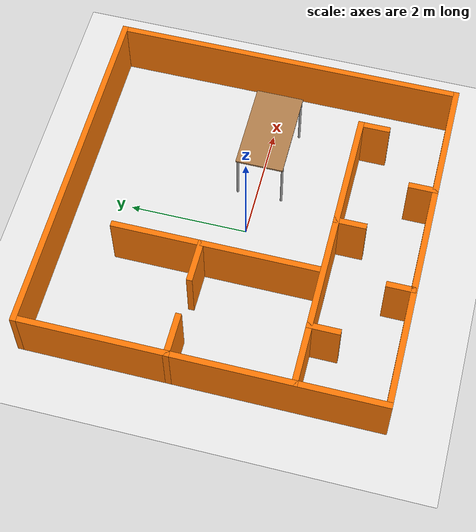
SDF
<sdf version="1.7">
 <world name="default">
  <plugin name="gazebo_ros_state" filename="libgazebo_ros_state.so">
   <ros><namespace>/gazebo</namespace></ros>
   <update_rate>30.0</update_rate>
  </plugin>
  <model name="slippery_ground">
   <static>1</static>
   <link name="link">
    <collision name="collision1">
     <geometry><plane><normal>0 0 1</normal><size>100 100</size></plane></geometry>
     <surface><friction><ode><mu>10</mu><mu2>10</mu2></ode></friction></surface>
    </collision>
    <visual name="visual">
     <geometry><plane><normal>0 0 1</normal><size>100 100</size></plane></geometry>
     <material>
      <script><uri>file://media/materials/scripts/gazebo.material</uri><name>Gazebo/White</name></script>
     </material>
    </visual>
   </link>
  </model>
  <light name="sun" type="directional">
   <pose>0 0 10 0 -0 0</pose>
   <diffuse>0.8 0.8 0.8 1</diffuse>
   <specular>0.2 0.2 0.2 1</specular>
   <attenuation>
    <range>1000</range>
    <constant>0.9</constant>
    <linear>0.01</linear>
    <quadratic>0.001</quadratic>
   </attenuation>
   <direction>-0.5 0.1 -0.9</direction>
   <spot><inner_angle>0</inner_angle><outer_angle>0</outer_angle><falloff>0</falloff></spot>
  </light>
  <scene><shadows>0</shadows><ambient>0.4 0.4 0.4 1</ambient><background>0.7 0.7 0.7 1</background></scene>
  <physics type="ode">
   <real_time_update_rate>1000</real_time_update_rate>
   <max_step_size>0.001</max_step_size>
   <real_time_factor>1</real_time_factor>
   <ode>
    <solver>
     <type>quick</type>
     <iters>150</iters>
     <precon_iters>0</precon_iters>
     <sor>1.4</sor>
     <use_dynamic_moi_rescaling>1</use_dynamic_moi_rescaling>
    </solver>
    <constraints>
     <cfm>1e-05</cfm>
     <erp>0.2</erp>
     <contact_max_correcting_vel>2000</contact_max_correcting_vel>
     <contact_surface_layer>0.01</contact_surface_layer>
    </constraints>
   </ode>
  </physics>
  <gravity>0 0 -9.8</gravity>
  <magnetic_field>6e-06 2.3e-05 -4.2e-05</magnetic_field>
  <atmosphere type="adiabatic"/>
  <audio><device>default</device></audio>
  <spherical_coordinates>
   <surface_model>EARTH_WGS84</surface_model>
   <latitude_deg>0</latitude_deg>
   <longitude_deg>0</longitude_deg>
   <elevation>0</elevation>
   <heading_deg>0</heading_deg>
  </spherical_coordinates>
  <model name="testing">
   <link name="Wall_20">
    <collision name="Wall_20_Collision">
     <geometry><box><size>6 0.1 1</size></box></geometry>
     <pose>0 0 0.5 0 -0 0</pose>
    </collision>
    <visual name="Wall_20_Visual">
     <pose>0 0 0.5 0 -0 0</pose>
     <geometry><box><size>6 0.1 1</size></box></geometry>
     <material>
      <script><uri>file://media/materials/scripts/gazebo.material</uri><name>Gazebo/Grey</name></script>
      <ambient>0.996078 0.47451 0.0196078 1</ambient>
     </material>
     <meta><layer>0</layer></meta>
    </visual>
    <pose>-2.95 0 0 0 -0 -1.5708</pose>
   </link>
   <link name="Wall_21">
    <collision name="Wall_21_Collision">
     <geometry><box><size>6 0.1 1</size></box></geometry>
     <pose>0 0 0.5 0 -0 0</pose>
    </collision>
    <visual name="Wall_21_Visual">
     <pose>0 0 0.5 0 -0 0</pose>
     <geometry><box><size>6 0.1 1</size></box></geometry>
     <material>
      <script><uri>file://media/materials/scripts/gazebo.material</uri><name>Gazebo/Grey</name></script>
      <ambient>0.996078 0.47451 0.0196078 1</ambient>
     </material>
     <meta><layer>0</layer></meta>
    </visual>
    <pose>0 -2.95 0 0 -0 0</pose>
   </link>
   <link name="Wall_22">
    <collision name="Wall_22_Collision">
     <geometry><box><size>6 0.1 1</size></box></geometry>
     <pose>0 0 0.5 0 -0 0</pose>
    </collision>
    <visual name="Wall_22_Visual">
     <pose>0 0 0.5 0 -0 0</pose>
     <geometry><box><size>6 0.1 1</size></box></geometry>
     <material>
      <script><uri>file://media/materials/scripts/gazebo.material</uri><name>Gazebo/Grey</name></script>
      <ambient>0.996078 0.47451 0.0196078 1</ambient>
     </material>
     <meta><layer>0</layer></meta>
    </visual>
    <pose>2.95 0 0 0 -0 1.5708</pose>
   </link>
   <link name="Wall_23">
    <collision name="Wall_23_Collision">
     <geometry><box><size>6 0.1 1</size></box></geometry>
     <pose>0 0 0.5 0 -0 0</pose>
    </collision>
    <visual name="Wall_23_Visual">
     <pose>0 0 0.5 0 -0 0</pose>
     <geometry><box><size>6 0.1 1</size></box></geometry>
     <material>
      <script><uri>file://media/materials/scripts/gazebo.material</uri><name>Gazebo/Grey</name></script>
      <ambient>0.996078 0.47451 0.0196078 1</ambient>
     </material>
     <meta><layer>0</layer></meta>
    </visual>
    <pose>0 2.95 0 0 -0 3.14159</pose>
   </link>
   <link name="Wall_25">
    <collision name="Wall_25_Collision">
     <geometry><box><size>5 0.1 1</size></box></geometry>
     <pose>0 0 0.5 0 -0 0</pose>
    </collision>
    <visual name="Wall_25_Visual">
     <pose>0 0 0.5 0 -0 0</pose>
     <geometry><box><size>5 0.1 1</size></box></geometry>
     <material>
      <script><uri>file://media/materials/scripts/gazebo.material</uri><name>Gazebo/Grey</name></script>
      <ambient>0.996078 0.47451 0.0196078 1</ambient>
     </material>
     <meta><layer>0</layer></meta>
    </visual>
    <pose>-0.5 -1.5 0 0 -0 0</pose>
   </link>
   <link name="Wall_29">
    <collision name="Wall_29_Collision">
     <geometry><box><size>0.5 0.1 1</size></box></geometry>
     <pose>0 0 0.5 0 -0 0</pose>
    </collision>
    <visual name="Wall_29_Visual">
     <pose>0 0 0.5 0 -0 0</pose>
     <geometry><box><size>0.5 0.1 1</size></box></geometry>
     <material>
      <script><uri>file://media/materials/scripts/gazebo.material</uri><name>Gazebo/Grey</name></script>
      <ambient>0.996078 0.47451 0.0196078 1</ambient>
     </material>
     <meta><layer>0</layer></meta>
    </visual>
    <pose>-0.95 -2.75 0 0 -0 1.5708</pose>
   </link>
   <link name="Wall_31">
    <collision name="Wall_31_Collision">
     <geometry><box><size>0.55 0.1 1</size></box></geometry>
     <pose>0 0 0.5 0 -0 0</pose>
    </collision>
    <visual name="Wall_31_Visual">
     <pose>0 0 0.5 0 -0 0</pose>
     <geometry><box><size>0.55 0.1 1</size></box></geometry>
     <material>
      <script><uri>file://media/materials/scripts/gazebo.material</uri><name>Gazebo/Grey</name></script>
      <ambient>0.996078 0.47451 0.0196078 1</ambient>
     </material>
     <meta><layer>0</layer></meta>
    </visual>
    <pose>0 -1.725 0 0 -0 -1.5708</pose>
   </link>
   <link name="Wall_33">
    <collision name="Wall_33_Collision">
     <geometry><box><size>0.5 0.1 1</size></box></geometry>
     <pose>0 0 0.5 0 -0 0</pose>
    </collision>
    <visual name="Wall_33_Visual">
     <pose>0 0 0.5 0 -0 0</pose>
     <geometry><box><size>0.5 0.1 1</size></box></geometry>
     <material>
      <script><uri>file://media/materials/scripts/gazebo.material</uri><name>Gazebo/Grey</name></script>
      <ambient>0.996078 0.47451 0.0196078 1</ambient>
     </material>
     <meta><layer>0</layer></meta>
    </visual>
    <pose>0.95 -2.75 0 0 -0 1.5708</pose>
   </link>
   <link name="Wall_35">
    <collision name="Wall_35_Collision">
     <geometry><box><size>0.55 0.1 1</size></box></geometry>
     <pose>0 0 0.5 0 -0 0</pose>
    </collision>
    <visual name="Wall_35_Visual">
     <pose>0 0 0.5 0 -0 0</pose>
     <geometry><box><size>0.55 0.1 1</size></box></geometry>
     <material>
      <script><uri>file://media/materials/scripts/gazebo.material</uri><name>Gazebo/Grey</name></script>
      <ambient>0.996078 0.47451 0.0196078 1</ambient>
     </material>
     <meta><layer>0</layer></meta>
    </visual>
    <pose>1.95 -1.725 0 0 -0 -1.5708</pose>
   </link>
   <link name="Wall_38">
    <collision name="Wall_38_Collision">
     <geometry><box><size>0.55 0.1 1</size></box></geometry>
     <pose>0 0 0.5 0 -0 0</pose>
    </collision>
    <visual name="Wall_38_Visual">
     <pose>0 0 0.5 0 -0 0</pose>
     <geometry><box><size>0.55 0.1 1</size></box></geometry>
     <material>
      <script><uri>file://media/materials/scripts/gazebo.material</uri><name>Gazebo/Grey</name></script>
      <ambient>0.996078 0.47451 0.0196078 1</ambient>
     </material>
     <meta><layer>0</layer></meta>
    </visual>
    <pose>-1.95 -1.725 0 0 -0 -1.5708</pose>
   </link>
   <link name="Wall_40">
    <collision name="Wall_40_Collision">
     <geometry><box><size>3.55 0.1 1</size></box></geometry>
     <pose>0 0 0.5 0 -0 0</pose>
    </collision>
    <visual name="Wall_40_Visual">
     <pose>0 0 0.5 0 -0 0</pose>
     <geometry><box><size>3.55 0.1 1</size></box></geometry>
     <material>
      <script><uri>file://media/materials/scripts/gazebo.material</uri><name>Gazebo/Grey</name></script>
      <ambient>0.996078 0.47451 0.0196078 1</ambient>
     </material>
     <meta><layer>0</layer></meta>
    </visual>
    <pose>-0.95 0.225 0 0 -0 1.5708</pose>
   </link>
   <link name="Wall_42">
    <collision name="Wall_42_Collision">
     <geometry><box><size>0.75 0.1 1</size></box></geometry>
     <pose>0 0 0.5 0 -0 0</pose>
    </collision>
    <visual name="Wall_42_Visual">
     <pose>0 0 0.5 0 -0 0</pose>
     <geometry><box><size>0.75 0.1 1</size></box></geometry>
     <material>
      <script><uri>file://media/materials/scripts/gazebo.material</uri><name>Gazebo/Grey</name></script>
      <ambient>0.996078 0.47451 0.0196078 1</ambient>
     </material>
     <meta><layer>0</layer></meta>
    </visual>
    <pose>-2.625 0.5 0 0 -0 0</pose>
   </link>
   <link name="Wall_44">
    <collision name="Wall_44_Collision">
     <geometry><box><size>0.75 0.1 1</size></box></geometry>
     <pose>0 0 0.5 0 -0 0</pose>
    </collision>
    <visual name="Wall_44_Visual">
     <pose>0 0 0.5 0 -0 0</pose>
     <geometry><box><size>0.75 0.1 1</size></box></geometry>
     <material>
      <script><uri>file://media/materials/scripts/gazebo.material</uri><name>Gazebo/Grey</name></script>
      <ambient>0.996078 0.47451 0.0196078 1</ambient>
     </material>
     <meta><layer>0</layer></meta>
    </visual>
    <pose>-1.275 0.5 0 0 -0 3.14159</pose>
   </link>
   <static>1</static>
  </model>
  <model name="Table">
   <static>1</static>
   <link name="link">
    <collision name="surface">
     <pose>0 0 1 0 -0 0</pose>
     <geometry><box><size>1.5 0.8 0.03</size></box></geometry>
     <surface><friction><ode><mu>0.6</mu><mu2>0.6</mu2></ode></friction></surface>
    </collision>
    <visual name="visual1">
     <pose>0 0 1 0 -0 0</pose>
     <geometry><box><size>1.5 0.8 0.03</size></box></geometry>
     <material>
      <diffuse>1 1 1 1</diffuse>
      <script><uri>file://media/materials/scripts/gazebo.material</uri><name>Gazebo/Wood</name></script>
      <pbr>
       <metal>
        <albedo_map>https://fuel.ignitionrobotics.org/1.0/openrobotics/models/table/4/files/Table_Diffuse.jpg</albedo_map>
       </metal>
      </pbr>
     </material>
    </visual>
    <collision name="c_front_left_leg">
     <pose>0.68 0.38 0.5 0 -0 0</pose>
     <geometry><cylinder><radius>0.02</radius><length>1</length></cylinder></geometry>
    </collision>
    <visual name="v_front_left_leg">
     <pose>0.68 0.38 0.5 0 -0 0</pose>
     <geometry><cylinder><radius>0.02</radius><length>1</length></cylinder></geometry>
     <material>
      <diffuse>0.5 0.5 0.5 1</diffuse>
      <script><uri>file://media/materials/scripts/gazebo.material</uri><name>Gazebo/Grey</name></script>
     </material>
    </visual>
    <collision name="c_front_right_leg">
     <pose>0.68 -0.38 0.5 0 -0 0</pose>
     <geometry><cylinder><radius>0.02</radius><length>1</length></cylinder></geometry>
    </collision>
    <visual name="v_front_right_leg">
     <pose>0.68 -0.38 0.5 0 -0 0</pose>
     <geometry><cylinder><radius>0.02</radius><length>1</length></cylinder></geometry>
     <material>
      <diffuse>0.5 0.5 0.5 1</diffuse>
      <script><uri>file://media/materials/scripts/gazebo.material</uri><name>Gazebo/Grey</name></script>
     </material>
    </visual>
    <collision name="c_back_right_leg">
     <pose>-0.68 -0.38 0.5 0 -0 0</pose>
     <geometry><cylinder><radius>0.02</radius><length>1</length></cylinder></geometry>
    </collision>
    <visual name="v_back_right_leg">
     <pose>-0.68 -0.38 0.5 0 -0 0</pose>
     <geometry><cylinder><radius>0.02</radius><length>1</length></cylinder></geometry>
     <material>
      <diffuse>0.5 0.5 0.5 1</diffuse>
      <script><uri>file://media/materials/scripts/gazebo.material</uri><name>Gazebo/Grey</name></script>
     </material>
    </visual>
    <collision name="c_back_left_leg">
     <pose>-0.68 0.38 0.5 0 -0 0</pose>
     <geometry><cylinder><radius>0.02</radius><length>1</length></cylinder></geometry>
    </collision>
    <visual name="v_back_left_leg">
     <pose>-0.68 0.38 0.5 0 -0 0</pose>
     <geometry><cylinder><radius>0.02</radius><length>1</length></cylinder></geometry>
     <material>
      <diffuse>0.5 0.5 0.5 1</diffuse>
      <script><uri>file://media/materials/scripts/gazebo.material</uri><name>Gazebo/Grey</name></script>
     </material>
    </visual>
   </link>
   <pose>1.44212 -0.044233 0 0 -0 0</pose>
  </model>
 </world>
</sdf>
